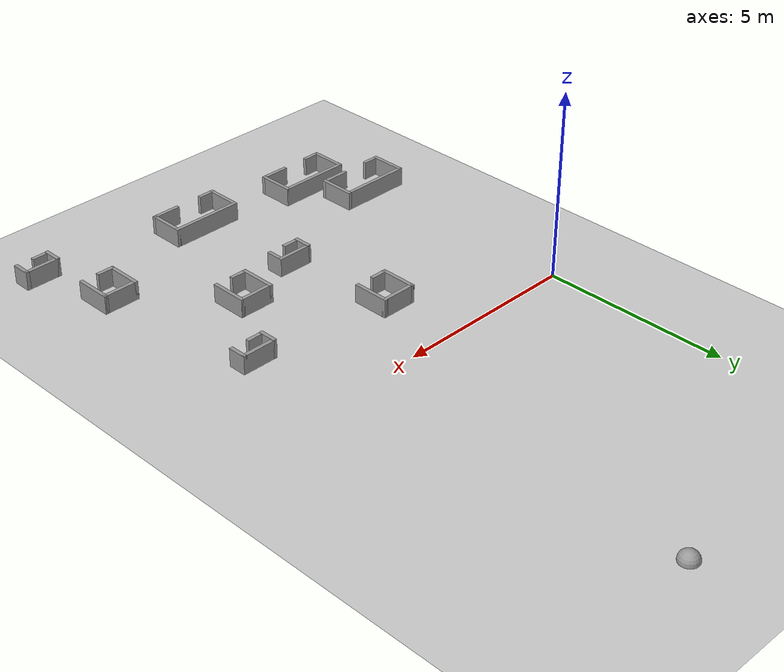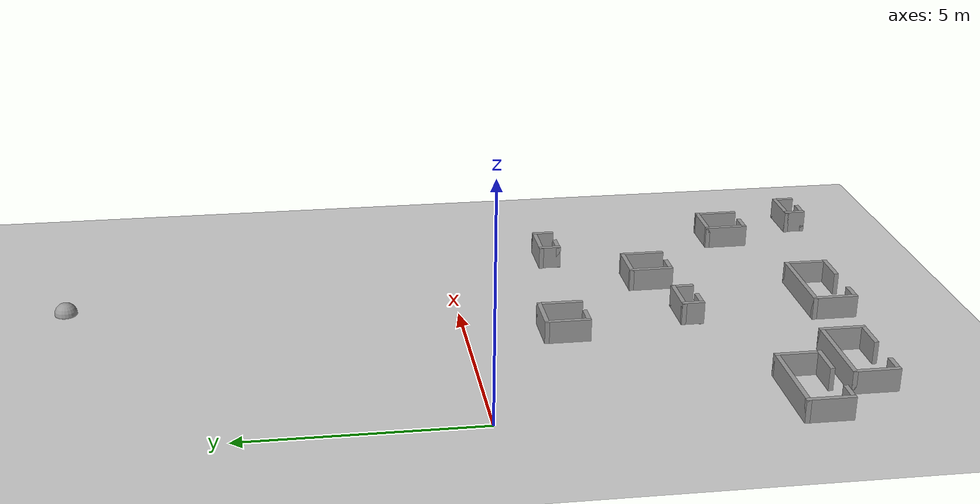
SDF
<sdf version="1.6">
 <world name="default">
  <model name="ground_plane">
   <static>1</static>
   <link name="link">
    <collision name="collision">
     <geometry><plane><normal>0 0 1</normal><size>20 20</size></plane></geometry>
     <surface>
      <contact><collide_bitmask>65535</collide_bitmask></contact>
      <friction><ode><mu>100</mu><mu2>50</mu2></ode></friction>
     </surface>
    </collision>
    <visual name="visual">
     <cast_shadows>0</cast_shadows>
     <geometry><plane><normal>0 0 1</normal><size>20 20</size></plane></geometry>
     <material>
      <script><uri>file://media/materials/scripts/gazebo.material</uri><name>Gazebo/Grey</name></script>
     </material>
    </visual>
   </link>
  </model>
  <model name="shape0">
   <pose>4.3 -4.95 0 0 -0 0</pose>
   <link name="Wall_0">
    <pose>0 0.2 0 0 -0 0</pose>
    <inertial>
     <mass>1</mass>
     <inertia><ixx>1</ixx><ixy>0</ixy><ixz>0</ixz><iyy>1</iyy><iyz>0</iyz><izz>1</izz></inertia>
    </inertial>
    <visual name="Wall_0_Visual">
     <pose>0 0 0.25 0 -0 0</pose>
     <geometry><box><size>1 0.1 0.5</size></box></geometry>
     <material>
      <script><uri>file://media/materials/scripts/gazebo.material</uri><name>Gazebo/Grey</name></script>
      <ambient>1 1 1 1</ambient>
      <shader type="vertex"><normal_map>__default__</normal_map></shader>
      <diffuse>0.7 0.7 0.7 1</diffuse>
      <specular>0.01 0.01 0.01 1</specular>
      <emissive>0 0 0 1</emissive>
     </material>
     <meta><layer>0</layer></meta>
    </visual>
    <collision name="Wall_0_Collision">
     <pose>0 0 0.25 0 -0 0</pose>
     <geometry><box><size>1 0.1 0.5</size></box></geometry>
     <surface>
      <friction>
       <ode><mu>1</mu><mu2>1</mu2><fdir1>0 0 0</fdir1><slip1>0</slip1><slip2>0</slip2></ode>
       <torsional>
        <coefficient>1</coefficient>
        <patch_radius>0</patch_radius>
        <surface_radius>0</surface_radius>
        <use_patch_radius>1</use_patch_radius>
        <ode><slip>0</slip></ode>
       </torsional>
      </friction>
      <bounce><restitution_coefficient>0</restitution_coefficient><threshold>1e+06</threshold></bounce>
      <contact>
       <collide_without_contact>0</collide_without_contact>
       <collide_without_contact_bitmask>1</collide_without_contact_bitmask>
       <collide_bitmask>1</collide_bitmask>
       <ode>
        <soft_cfm>0</soft_cfm>
        <soft_erp>0.2</soft_erp>
        <kp>1e+13</kp>
        <kd>1</kd>
        <max_vel>0.01</max_vel>
        <min_depth>0</min_depth>
       </ode>
       <bullet>
        <split_impulse>1</split_impulse>
        <split_impulse_penetration_threshold>-0.01</split_impulse_penetration_threshold>
        <soft_cfm>0</soft_cfm>
        <soft_erp>0.2</soft_erp>
        <kp>1e+13</kp>
        <kd>1</kd>
       </bullet>
      </contact>
     </surface>
    </collision>
   </link>
   <link name="Wall_2">
    <pose>-0.45 0 0.01 0 0 -1.5708</pose>
    <inertial>
     <mass>1</mass>
     <inertia><ixx>1</ixx><ixy>0</ixy><ixz>0</ixz><iyy>1</iyy><iyz>0</iyz><izz>1</izz></inertia>
    </inertial>
    <visual name="Wall_2_Visual">
     <pose>0 0 0.25 0 -0 0</pose>
     <geometry><box><size>0.5 0.1 0.5</size></box></geometry>
     <material>
      <script><uri>file://media/materials/scripts/gazebo.material</uri><name>Gazebo/Grey</name></script>
      <ambient>1 1 1 1</ambient>
      <shader type="vertex"><normal_map>__default__</normal_map></shader>
      <diffuse>0.7 0.7 0.7 1</diffuse>
      <specular>0.01 0.01 0.01 1</specular>
      <emissive>0 0 0 1</emissive>
     </material>
     <meta><layer>0</layer></meta>
    </visual>
    <collision name="Wall_2_Collision">
     <pose>0 0 0.25 0 -0 0</pose>
     <geometry><box><size>0.5 0.1 0.5</size></box></geometry>
     <surface>
      <friction>
       <ode><mu>1</mu><mu2>1</mu2><fdir1>0 0 0</fdir1><slip1>0</slip1><slip2>0</slip2></ode>
       <torsional>
        <coefficient>1</coefficient>
        <patch_radius>0</patch_radius>
        <surface_radius>0</surface_radius>
        <use_patch_radius>1</use_patch_radius>
        <ode><slip>0</slip></ode>
       </torsional>
      </friction>
      <bounce><restitution_coefficient>0</restitution_coefficient><threshold>1e+06</threshold></bounce>
      <contact>
       <collide_without_contact>0</collide_without_contact>
       <collide_without_contact_bitmask>1</collide_without_contact_bitmask>
       <collide_bitmask>1</collide_bitmask>
       <ode>
        <soft_cfm>0</soft_cfm>
        <soft_erp>0.2</soft_erp>
        <kp>1e+13</kp>
        <kd>1</kd>
        <max_vel>0.01</max_vel>
        <min_depth>0</min_depth>
       </ode>
       <bullet>
        <split_impulse>1</split_impulse>
        <split_impulse_penetration_threshold>-0.01</split_impulse_penetration_threshold>
        <soft_cfm>0</soft_cfm>
        <soft_erp>0.2</soft_erp>
        <kp>1e+13</kp>
        <kd>1</kd>
       </bullet>
      </contact>
     </surface>
    </collision>
   </link>
   <link name="Wall_4">
    <pose>0.45 0 0 0 0 -1.5708</pose>
    <inertial>
     <mass>1</mass>
     <inertia><ixx>1</ixx><ixy>0</ixy><ixz>0</ixz><iyy>1</iyy><iyz>0</iyz><izz>1</izz></inertia>
    </inertial>
    <visual name="Wall_4_Visual">
     <pose>0 0 0.25 0 -0 0</pose>
     <geometry><box><size>0.5 0.1 0.5</size></box></geometry>
     <material>
      <script><uri>file://media/materials/scripts/gazebo.material</uri><name>Gazebo/Grey</name></script>
      <ambient>1 1 1 1</ambient>
      <shader type="vertex"><normal_map>__default__</normal_map></shader>
      <diffuse>0.7 0.7 0.7 1</diffuse>
      <specular>0.01 0.01 0.01 1</specular>
      <emissive>0 0 0 1</emissive>
     </material>
     <meta><layer>0</layer></meta>
    </visual>
    <collision name="Wall_4_Collision">
     <pose>0 0 0.25 0 -0 0</pose>
     <geometry><box><size>0.5 0.1 0.5</size></box></geometry>
     <surface>
      <friction>
       <ode><mu>1</mu><mu2>1</mu2><fdir1>0 0 0</fdir1><slip1>0</slip1><slip2>0</slip2></ode>
       <torsional>
        <coefficient>1</coefficient>
        <patch_radius>0</patch_radius>
        <surface_radius>0</surface_radius>
        <use_patch_radius>1</use_patch_radius>
        <ode><slip>0</slip></ode>
       </torsional>
      </friction>
      <bounce><restitution_coefficient>0</restitution_coefficient><threshold>1e+06</threshold></bounce>
      <contact>
       <collide_without_contact>0</collide_without_contact>
       <collide_without_contact_bitmask>1</collide_without_contact_bitmask>
       <collide_bitmask>1</collide_bitmask>
       <ode>
        <soft_cfm>0</soft_cfm>
        <soft_erp>0.2</soft_erp>
        <kp>1e+13</kp>
        <kd>1</kd>
        <max_vel>0.01</max_vel>
        <min_depth>0</min_depth>
       </ode>
       <bullet>
        <split_impulse>1</split_impulse>
        <split_impulse_penetration_threshold>-0.01</split_impulse_penetration_threshold>
        <soft_cfm>0</soft_cfm>
        <soft_erp>0.2</soft_erp>
        <kp>1e+13</kp>
        <kd>1</kd>
       </bullet>
      </contact>
     </surface>
    </collision>
   </link>
   <link name="Wall_7">
    <pose>-0.25 -0.2 0 0 -0 0</pose>
    <inertial>
     <mass>1</mass>
     <inertia><ixx>1</ixx><ixy>0</ixy><ixz>0</ixz><iyy>1</iyy><iyz>0</iyz><izz>1</izz></inertia>
    </inertial>
    <visual name="Wall_7_Visual">
     <pose>0 0 0.25 0 -0 0</pose>
     <geometry><box><size>0.5 0.1 0.5</size></box></geometry>
     <material>
      <script><uri>file://media/materials/scripts/gazebo.material</uri><name>Gazebo/Grey</name></script>
      <ambient>1 1 1 1</ambient>
      <shader type="vertex"><normal_map>__default__</normal_map></shader>
      <diffuse>0.7 0.7 0.7 1</diffuse>
      <specular>0.01 0.01 0.01 1</specular>
      <emissive>0 0 0 1</emissive>
     </material>
     <meta><layer>0</layer></meta>
    </visual>
    <collision name="Wall_7_Collision">
     <pose>0 0 0.25 0 -0 0</pose>
     <geometry><box><size>0.5 0.1 0.5</size></box></geometry>
     <surface>
      <friction>
       <ode><mu>1</mu><mu2>1</mu2><fdir1>0 0 0</fdir1><slip1>0</slip1><slip2>0</slip2></ode>
       <torsional>
        <coefficient>1</coefficient>
        <patch_radius>0</patch_radius>
        <surface_radius>0</surface_radius>
        <use_patch_radius>1</use_patch_radius>
        <ode><slip>0</slip></ode>
       </torsional>
      </friction>
      <bounce><restitution_coefficient>0</restitution_coefficient><threshold>1e+06</threshold></bounce>
      <contact>
       <collide_without_contact>0</collide_without_contact>
       <collide_without_contact_bitmask>1</collide_without_contact_bitmask>
       <collide_bitmask>1</collide_bitmask>
       <ode>
        <soft_cfm>0</soft_cfm>
        <soft_erp>0.2</soft_erp>
        <kp>1e+13</kp>
        <kd>1</kd>
        <max_vel>0.01</max_vel>
        <min_depth>0</min_depth>
       </ode>
       <bullet>
        <split_impulse>1</split_impulse>
        <split_impulse_penetration_threshold>-0.01</split_impulse_penetration_threshold>
        <soft_cfm>0</soft_cfm>
        <soft_erp>0.2</soft_erp>
        <kp>1e+13</kp>
        <kd>1</kd>
       </bullet>
      </contact>
     </surface>
    </collision>
   </link>
   <static>1</static>
  </model>
  <model name="shape0">
   <pose>7.7 -2.45 0 0 -0 0</pose>
   <link name="Wall_0">
    <pose>0 0.2 0 0 -0 0</pose>
    <inertial>
     <mass>1</mass>
     <inertia><ixx>1</ixx><ixy>0</ixy><ixz>0</ixz><iyy>1</iyy><iyz>0</iyz><izz>1</izz></inertia>
    </inertial>
    <visual name="Wall_0_Visual">
     <pose>0 0 0.25 0 -0 0</pose>
     <geometry><box><size>1 0.1 0.5</size></box></geometry>
     <material>
      <script><uri>file://media/materials/scripts/gazebo.material</uri><name>Gazebo/Grey</name></script>
      <ambient>1 1 1 1</ambient>
      <shader type="vertex"><normal_map>__default__</normal_map></shader>
      <diffuse>0.7 0.7 0.7 1</diffuse>
      <specular>0.01 0.01 0.01 1</specular>
      <emissive>0 0 0 1</emissive>
     </material>
     <meta><layer>0</layer></meta>
    </visual>
    <collision name="Wall_0_Collision">
     <pose>0 0 0.25 0 -0 0</pose>
     <geometry><box><size>1 0.1 0.5</size></box></geometry>
     <surface>
      <friction>
       <ode><mu>1</mu><mu2>1</mu2><fdir1>0 0 0</fdir1><slip1>0</slip1><slip2>0</slip2></ode>
       <torsional>
        <coefficient>1</coefficient>
        <patch_radius>0</patch_radius>
        <surface_radius>0</surface_radius>
        <use_patch_radius>1</use_patch_radius>
        <ode><slip>0</slip></ode>
       </torsional>
      </friction>
      <bounce><restitution_coefficient>0</restitution_coefficient><threshold>1e+06</threshold></bounce>
      <contact>
       <collide_without_contact>0</collide_without_contact>
       <collide_without_contact_bitmask>1</collide_without_contact_bitmask>
       <collide_bitmask>1</collide_bitmask>
       <ode>
        <soft_cfm>0</soft_cfm>
        <soft_erp>0.2</soft_erp>
        <kp>1e+13</kp>
        <kd>1</kd>
        <max_vel>0.01</max_vel>
        <min_depth>0</min_depth>
       </ode>
       <bullet>
        <split_impulse>1</split_impulse>
        <split_impulse_penetration_threshold>-0.01</split_impulse_penetration_threshold>
        <soft_cfm>0</soft_cfm>
        <soft_erp>0.2</soft_erp>
        <kp>1e+13</kp>
        <kd>1</kd>
       </bullet>
      </contact>
     </surface>
    </collision>
   </link>
   <link name="Wall_2">
    <pose>-0.45 0 0.01 0 0 -1.5708</pose>
    <inertial>
     <mass>1</mass>
     <inertia><ixx>1</ixx><ixy>0</ixy><ixz>0</ixz><iyy>1</iyy><iyz>0</iyz><izz>1</izz></inertia>
    </inertial>
    <visual name="Wall_2_Visual">
     <pose>0 0 0.25 0 -0 0</pose>
     <geometry><box><size>0.5 0.1 0.5</size></box></geometry>
     <material>
      <script><uri>file://media/materials/scripts/gazebo.material</uri><name>Gazebo/Grey</name></script>
      <ambient>1 1 1 1</ambient>
      <shader type="vertex"><normal_map>__default__</normal_map></shader>
      <diffuse>0.7 0.7 0.7 1</diffuse>
      <specular>0.01 0.01 0.01 1</specular>
      <emissive>0 0 0 1</emissive>
     </material>
     <meta><layer>0</layer></meta>
    </visual>
    <collision name="Wall_2_Collision">
     <pose>0 0 0.25 0 -0 0</pose>
     <geometry><box><size>0.5 0.1 0.5</size></box></geometry>
     <surface>
      <friction>
       <ode><mu>1</mu><mu2>1</mu2><fdir1>0 0 0</fdir1><slip1>0</slip1><slip2>0</slip2></ode>
       <torsional>
        <coefficient>1</coefficient>
        <patch_radius>0</patch_radius>
        <surface_radius>0</surface_radius>
        <use_patch_radius>1</use_patch_radius>
        <ode><slip>0</slip></ode>
       </torsional>
      </friction>
      <bounce><restitution_coefficient>0</restitution_coefficient><threshold>1e+06</threshold></bounce>
      <contact>
       <collide_without_contact>0</collide_without_contact>
       <collide_without_contact_bitmask>1</collide_without_contact_bitmask>
       <collide_bitmask>1</collide_bitmask>
       <ode>
        <soft_cfm>0</soft_cfm>
        <soft_erp>0.2</soft_erp>
        <kp>1e+13</kp>
        <kd>1</kd>
        <max_vel>0.01</max_vel>
        <min_depth>0</min_depth>
       </ode>
       <bullet>
        <split_impulse>1</split_impulse>
        <split_impulse_penetration_threshold>-0.01</split_impulse_penetration_threshold>
        <soft_cfm>0</soft_cfm>
        <soft_erp>0.2</soft_erp>
        <kp>1e+13</kp>
        <kd>1</kd>
       </bullet>
      </contact>
     </surface>
    </collision>
   </link>
   <link name="Wall_4">
    <pose>0.45 0 0 0 0 -1.5708</pose>
    <inertial>
     <mass>1</mass>
     <inertia><ixx>1</ixx><ixy>0</ixy><ixz>0</ixz><iyy>1</iyy><iyz>0</iyz><izz>1</izz></inertia>
    </inertial>
    <visual name="Wall_4_Visual">
     <pose>0 0 0.25 0 -0 0</pose>
     <geometry><box><size>0.5 0.1 0.5</size></box></geometry>
     <material>
      <script><uri>file://media/materials/scripts/gazebo.material</uri><name>Gazebo/Grey</name></script>
      <ambient>1 1 1 1</ambient>
      <shader type="vertex"><normal_map>__default__</normal_map></shader>
      <diffuse>0.7 0.7 0.7 1</diffuse>
      <specular>0.01 0.01 0.01 1</specular>
      <emissive>0 0 0 1</emissive>
     </material>
     <meta><layer>0</layer></meta>
    </visual>
    <collision name="Wall_4_Collision">
     <pose>0 0 0.25 0 -0 0</pose>
     <geometry><box><size>0.5 0.1 0.5</size></box></geometry>
     <surface>
      <friction>
       <ode><mu>1</mu><mu2>1</mu2><fdir1>0 0 0</fdir1><slip1>0</slip1><slip2>0</slip2></ode>
       <torsional>
        <coefficient>1</coefficient>
        <patch_radius>0</patch_radius>
        <surface_radius>0</surface_radius>
        <use_patch_radius>1</use_patch_radius>
        <ode><slip>0</slip></ode>
       </torsional>
      </friction>
      <bounce><restitution_coefficient>0</restitution_coefficient><threshold>1e+06</threshold></bounce>
      <contact>
       <collide_without_contact>0</collide_without_contact>
       <collide_without_contact_bitmask>1</collide_without_contact_bitmask>
       <collide_bitmask>1</collide_bitmask>
       <ode>
        <soft_cfm>0</soft_cfm>
        <soft_erp>0.2</soft_erp>
        <kp>1e+13</kp>
        <kd>1</kd>
        <max_vel>0.01</max_vel>
        <min_depth>0</min_depth>
       </ode>
       <bullet>
        <split_impulse>1</split_impulse>
        <split_impulse_penetration_threshold>-0.01</split_impulse_penetration_threshold>
        <soft_cfm>0</soft_cfm>
        <soft_erp>0.2</soft_erp>
        <kp>1e+13</kp>
        <kd>1</kd>
       </bullet>
      </contact>
     </surface>
    </collision>
   </link>
   <link name="Wall_7">
    <pose>-0.25 -0.2 0 0 -0 0</pose>
    <inertial>
     <mass>1</mass>
     <inertia><ixx>1</ixx><ixy>0</ixy><ixz>0</ixz><iyy>1</iyy><iyz>0</iyz><izz>1</izz></inertia>
    </inertial>
    <visual name="Wall_7_Visual">
     <pose>0 0 0.25 0 -0 0</pose>
     <geometry><box><size>0.5 0.1 0.5</size></box></geometry>
     <material>
      <script><uri>file://media/materials/scripts/gazebo.material</uri><name>Gazebo/Grey</name></script>
      <ambient>1 1 1 1</ambient>
      <shader type="vertex"><normal_map>__default__</normal_map></shader>
      <diffuse>0.7 0.7 0.7 1</diffuse>
      <specular>0.01 0.01 0.01 1</specular>
      <emissive>0 0 0 1</emissive>
     </material>
     <meta><layer>0</layer></meta>
    </visual>
    <collision name="Wall_7_Collision">
     <pose>0 0 0.25 0 -0 0</pose>
     <geometry><box><size>0.5 0.1 0.5</size></box></geometry>
     <surface>
      <friction>
       <ode><mu>1</mu><mu2>1</mu2><fdir1>0 0 0</fdir1><slip1>0</slip1><slip2>0</slip2></ode>
       <torsional>
        <coefficient>1</coefficient>
        <patch_radius>0</patch_radius>
        <surface_radius>0</surface_radius>
        <use_patch_radius>1</use_patch_radius>
        <ode><slip>0</slip></ode>
       </torsional>
      </friction>
      <bounce><restitution_coefficient>0</restitution_coefficient><threshold>1e+06</threshold></bounce>
      <contact>
       <collide_without_contact>0</collide_without_contact>
       <collide_without_contact_bitmask>1</collide_without_contact_bitmask>
       <collide_bitmask>1</collide_bitmask>
       <ode>
        <soft_cfm>0</soft_cfm>
        <soft_erp>0.2</soft_erp>
        <kp>1e+13</kp>
        <kd>1</kd>
        <max_vel>0.01</max_vel>
        <min_depth>0</min_depth>
       </ode>
       <bullet>
        <split_impulse>1</split_impulse>
        <split_impulse_penetration_threshold>-0.01</split_impulse_penetration_threshold>
        <soft_cfm>0</soft_cfm>
        <soft_erp>0.2</soft_erp>
        <kp>1e+13</kp>
        <kd>1</kd>
       </bullet>
      </contact>
     </surface>
    </collision>
   </link>
   <static>1</static>
  </model>
  <model name="shape4">
   <pose>8.4 -6.9 0 0 -0 0</pose>
   <link name="Wall_14">
    <collision name="Wall_14_Collision">
     <geometry><box><size>1 0.1 0.5</size></box></geometry>
     <pose>0 0 0.25 0 -0 0</pose>
    </collision>
    <visual name="Wall_14_Visual">
     <pose>0 0 0.25 0 -0 0</pose>
     <geometry><box><size>1 0.1 0.5</size></box></geometry>
     <material>
      <script><uri>file://media/materials/scripts/gazebo.material</uri><name>Gazebo/Grey</name></script>
      <ambient>1 1 1 1</ambient>
     </material>
     <meta><layer>0</layer></meta>
    </visual>
    <pose>-0 0.45 0 0 -0 0</pose>
   </link>
   <link name="Wall_15">
    <collision name="Wall_15_Collision">
     <geometry><box><size>1 0.1 0.5</size></box></geometry>
     <pose>0 0 0.25 0 -0 0</pose>
    </collision>
    <visual name="Wall_15_Visual">
     <pose>0 0 0.25 0 -0 0</pose>
     <geometry><box><size>1 0.1 0.5</size></box></geometry>
     <material>
      <script><uri>file://media/materials/scripts/gazebo.material</uri><name>Gazebo/Grey</name></script>
      <ambient>1 1 1 1</ambient>
     </material>
     <meta><layer>0</layer></meta>
    </visual>
    <pose>0.45 -0 0 0 -0 -1.5708</pose>
   </link>
   <link name="Wall_17">
    <collision name="Wall_17_Collision">
     <geometry><box><size>1 0.1 0.5</size></box></geometry>
     <pose>0 0 0.25 0 -0 0</pose>
    </collision>
    <visual name="Wall_17_Visual">
     <pose>0 0 0.25 0 -0 0</pose>
     <geometry><box><size>1 0.1 0.5</size></box></geometry>
     <material>
      <script><uri>file://media/materials/scripts/gazebo.material</uri><name>Gazebo/Grey</name></script>
      <ambient>1 1 1 1</ambient>
     </material>
     <meta><layer>0</layer></meta>
    </visual>
    <pose>-0.45 -0 0 0 -0 -1.5708</pose>
   </link>
   <link name="Wall_18">
    <collision name="Wall_18_Collision">
     <geometry><box><size>0.5 0.1 0.5</size></box></geometry>
     <pose>0 0 0.25 0 -0 0</pose>
    </collision>
    <visual name="Wall_18_Visual">
     <pose>0 0 0.25 0 -0 0</pose>
     <geometry><box><size>0.5 0.1 0.5</size></box></geometry>
     <material>
      <script><uri>file://media/materials/scripts/gazebo.material</uri><name>Gazebo/Grey</name></script>
      <ambient>1 1 1 1</ambient>
     </material>
     <meta><layer>0</layer></meta>
    </visual>
    <pose>-0.25 -0.45 0 0 -0 0</pose>
   </link>
   <static>1</static>
  </model>
  <model name="shape4">
   <pose>6.2 -4.5 0 0 -0 0</pose>
   <link name="Wall_14">
    <collision name="Wall_14_Collision">
     <geometry><box><size>1 0.1 0.5</size></box></geometry>
     <pose>0 0 0.25 0 -0 0</pose>
    </collision>
    <visual name="Wall_14_Visual">
     <pose>0 0 0.25 0 -0 0</pose>
     <geometry><box><size>1 0.1 0.5</size></box></geometry>
     <material>
      <script><uri>file://media/materials/scripts/gazebo.material</uri><name>Gazebo/Grey</name></script>
      <ambient>1 1 1 1</ambient>
     </material>
     <meta><layer>0</layer></meta>
    </visual>
    <pose>-0 0.45 0 0 -0 0</pose>
   </link>
   <link name="Wall_15">
    <collision name="Wall_15_Collision">
     <geometry><box><size>1 0.1 0.5</size></box></geometry>
     <pose>0 0 0.25 0 -0 0</pose>
    </collision>
    <visual name="Wall_15_Visual">
     <pose>0 0 0.25 0 -0 0</pose>
     <geometry><box><size>1 0.1 0.5</size></box></geometry>
     <material>
      <script><uri>file://media/materials/scripts/gazebo.material</uri><name>Gazebo/Grey</name></script>
      <ambient>1 1 1 1</ambient>
     </material>
     <meta><layer>0</layer></meta>
    </visual>
    <pose>0.45 -0 0 0 -0 -1.5708</pose>
   </link>
   <link name="Wall_17">
    <collision name="Wall_17_Collision">
     <geometry><box><size>1 0.1 0.5</size></box></geometry>
     <pose>0 0 0.25 0 -0 0</pose>
    </collision>
    <visual name="Wall_17_Visual">
     <pose>0 0 0.25 0 -0 0</pose>
     <geometry><box><size>1 0.1 0.5</size></box></geometry>
     <material>
      <script><uri>file://media/materials/scripts/gazebo.material</uri><name>Gazebo/Grey</name></script>
      <ambient>1 1 1 1</ambient>
     </material>
     <meta><layer>0</layer></meta>
    </visual>
    <pose>-0.45 -0 0 0 -0 -1.5708</pose>
   </link>
   <link name="Wall_18">
    <collision name="Wall_18_Collision">
     <geometry><box><size>0.5 0.1 0.5</size></box></geometry>
     <pose>0 0 0.25 0 -0 0</pose>
    </collision>
    <visual name="Wall_18_Visual">
     <pose>0 0 0.25 0 -0 0</pose>
     <geometry><box><size>0.5 0.1 0.5</size></box></geometry>
     <material>
      <script><uri>file://media/materials/scripts/gazebo.material</uri><name>Gazebo/Grey</name></script>
      <ambient>1 1 1 1</ambient>
     </material>
     <meta><layer>0</layer></meta>
    </visual>
    <pose>-0.25 -0.45 0 0 -0 0</pose>
   </link>
   <static>1</static>
  </model>
  <model name="ball_d=50">
   <link name="link_1">
    <inertial>
     <mass>1</mass>
     <inertia><ixx>0.1</ixx><ixy>0</ixy><ixz>0</ixz><iyy>0.1</iyy><iyz>0</iyz><izz>0.1</izz></inertia>
    </inertial>
    <pose>6.15 8.55 0 0 -0 0</pose>
    <visual name="visual">
     <geometry><sphere><radius>0.25</radius></sphere></geometry>
     <material>
      <lighting>1</lighting>
      <script><uri>file://media/materials/scripts/gazebo.material</uri><name>Gazebo/Grey</name></script>
      <shader type="vertex"><normal_map>__default__</normal_map></shader>
      <ambient>0.3 0.3 0.3 1</ambient>
      <diffuse>0.7 0.7 0.7 1</diffuse>
      <specular>0.01 0.01 0.01 1</specular>
      <emissive>0 0 0 1</emissive>
     </material>
    </visual>
    <collision name="collision">
     <geometry><sphere><radius>0.25</radius></sphere></geometry>
     <surface>
      <friction>
       <ode><mu>1</mu><mu2>1</mu2><fdir1>0 0 0</fdir1><slip1>0</slip1><slip2>0</slip2></ode>
       <torsional>
        <coefficient>1</coefficient>
        <patch_radius>0</patch_radius>
        <surface_radius>0</surface_radius>
        <use_patch_radius>1</use_patch_radius>
        <ode><slip>0</slip></ode>
       </torsional>
      </friction>
      <bounce><restitution_coefficient>0</restitution_coefficient><threshold>1e+06</threshold></bounce>
      <contact>
       <collide_without_contact>0</collide_without_contact>
       <collide_without_contact_bitmask>1</collide_without_contact_bitmask>
       <collide_bitmask>1</collide_bitmask>
       <ode>
        <soft_cfm>0</soft_cfm>
        <soft_erp>0.2</soft_erp>
        <kp>1e+13</kp>
        <kd>1</kd>
        <max_vel>0.01</max_vel>
        <min_depth>0</min_depth>
       </ode>
       <bullet>
        <split_impulse>1</split_impulse>
        <split_impulse_penetration_threshold>-0.01</split_impulse_penetration_threshold>
        <soft_cfm>0</soft_cfm>
        <soft_erp>0.2</soft_erp>
        <kp>1e+13</kp>
        <kd>1</kd>
       </bullet>
      </contact>
     </surface>
    </collision>
   </link>
   <static>0</static>
  </model>
  <model name="shape1">
   <pose>0.3 -6.4 0 0 -0 0</pose>
   <link name="Wall_0">
    <collision name="Wall_0_Collision">
     <geometry><box><size>2 0.1 0.5</size></box></geometry>
     <pose>0 0 0.25 0 -0 0</pose>
    </collision>
    <visual name="Wall_0_Visual">
     <pose>0 0 0.25 0 -0 0</pose>
     <geometry><box><size>2 0.1 0.5</size></box></geometry>
     <material>
      <script><uri>file://media/materials/scripts/gazebo.material</uri><name>Gazebo/Grey</name></script>
      <ambient>1 1 1 1</ambient>
     </material>
     <meta><layer>0</layer></meta>
    </visual>
    <pose>0 0.45 0 0 -0 0</pose>
   </link>
   <link name="Wall_1">
    <collision name="Wall_1_Collision">
     <geometry><box><size>1 0.1 0.5</size></box></geometry>
     <pose>0 0 0.25 0 -0 0</pose>
    </collision>
    <visual name="Wall_1_Visual">
     <pose>0 0 0.25 0 -0 0</pose>
     <geometry><box><size>1 0.1 0.5</size></box></geometry>
     <material>
      <script><uri>file://media/materials/scripts/gazebo.material</uri><name>Gazebo/Grey</name></script>
      <ambient>1 1 1 1</ambient>
     </material>
     <meta><layer>0</layer></meta>
    </visual>
    <pose>0.95 -0 0 0 -0 -1.5708</pose>
   </link>
   <link name="Wall_2">
    <collision name="Wall_2_Collision">
     <geometry><box><size>0.8 0.1 0.5</size></box></geometry>
     <pose>0 0 0.25 0 -0 0</pose>
    </collision>
    <visual name="Wall_2_Visual">
     <pose>0 0 0.25 0 -0 0</pose>
     <geometry><box><size>0.8 0.1 0.5</size></box></geometry>
     <material>
      <script><uri>file://media/materials/scripts/gazebo.material</uri><name>Gazebo/Grey</name></script>
      <ambient>1 1 1 1</ambient>
     </material>
     <meta><layer>0</layer></meta>
    </visual>
    <pose>0.6 -0.45 0 0 -0 3.14159</pose>
   </link>
   <link name="Wall_4">
    <collision name="Wall_4_Collision">
     <geometry><box><size>1 0.1 0.5</size></box></geometry>
     <pose>0 0 0.25 0 -0 0</pose>
    </collision>
    <visual name="Wall_4_Visual">
     <pose>0 0 0.25 0 -0 0</pose>
     <geometry><box><size>1 0.1 0.5</size></box></geometry>
     <material>
      <script><uri>file://media/materials/scripts/gazebo.material</uri><name>Gazebo/Grey</name></script>
      <ambient>1 1 1 1</ambient>
     </material>
     <meta><layer>0</layer></meta>
    </visual>
    <pose>-0.95 -0 0 0 -0 -1.5708</pose>
   </link>
   <link name="Wall_5">
    <collision name="Wall_5_Collision">
     <geometry><box><size>0.499474 0.1 0.5</size></box></geometry>
     <pose>0 0 0.25 0 -0 0</pose>
    </collision>
    <visual name="Wall_5_Visual">
     <pose>0 0 0.25 0 -0 0</pose>
     <geometry><box><size>0.499474 0.1 0.5</size></box></geometry>
     <material>
      <script><uri>file://media/materials/scripts/gazebo.material</uri><name>Gazebo/Grey</name></script>
      <ambient>1 1 1 1</ambient>
     </material>
     <meta><layer>0</layer></meta>
    </visual>
    <pose>-0.75 -0.45 0 0 -0 0</pose>
   </link>
   <static>1</static>
  </model>
  <model name="shape0">
   <pose>9.1 -8.85 0 0 -0 0</pose>
   <link name="Wall_0">
    <pose>0 0.2 0 0 -0 0</pose>
    <inertial>
     <mass>1</mass>
     <inertia><ixx>1</ixx><ixy>0</ixy><ixz>0</ixz><iyy>1</iyy><iyz>0</iyz><izz>1</izz></inertia>
    </inertial>
    <visual name="Wall_0_Visual">
     <pose>0 0 0.25 0 -0 0</pose>
     <geometry><box><size>1 0.1 0.5</size></box></geometry>
     <material>
      <script><uri>file://media/materials/scripts/gazebo.material</uri><name>Gazebo/Grey</name></script>
      <ambient>1 1 1 1</ambient>
      <shader type="vertex"><normal_map>__default__</normal_map></shader>
      <diffuse>0.7 0.7 0.7 1</diffuse>
      <specular>0.01 0.01 0.01 1</specular>
      <emissive>0 0 0 1</emissive>
     </material>
     <meta><layer>0</layer></meta>
    </visual>
    <collision name="Wall_0_Collision">
     <pose>0 0 0.25 0 -0 0</pose>
     <geometry><box><size>1 0.1 0.5</size></box></geometry>
     <surface>
      <friction>
       <ode><mu>1</mu><mu2>1</mu2><fdir1>0 0 0</fdir1><slip1>0</slip1><slip2>0</slip2></ode>
       <torsional>
        <coefficient>1</coefficient>
        <patch_radius>0</patch_radius>
        <surface_radius>0</surface_radius>
        <use_patch_radius>1</use_patch_radius>
        <ode><slip>0</slip></ode>
       </torsional>
      </friction>
      <bounce><restitution_coefficient>0</restitution_coefficient><threshold>1e+06</threshold></bounce>
      <contact>
       <collide_without_contact>0</collide_without_contact>
       <collide_without_contact_bitmask>1</collide_without_contact_bitmask>
       <collide_bitmask>1</collide_bitmask>
       <ode>
        <soft_cfm>0</soft_cfm>
        <soft_erp>0.2</soft_erp>
        <kp>1e+13</kp>
        <kd>1</kd>
        <max_vel>0.01</max_vel>
        <min_depth>0</min_depth>
       </ode>
       <bullet>
        <split_impulse>1</split_impulse>
        <split_impulse_penetration_threshold>-0.01</split_impulse_penetration_threshold>
        <soft_cfm>0</soft_cfm>
        <soft_erp>0.2</soft_erp>
        <kp>1e+13</kp>
        <kd>1</kd>
       </bullet>
      </contact>
     </surface>
    </collision>
   </link>
   <link name="Wall_2">
    <pose>-0.45 0 0.01 0 0 -1.5708</pose>
    <inertial>
     <mass>1</mass>
     <inertia><ixx>1</ixx><ixy>0</ixy><ixz>0</ixz><iyy>1</iyy><iyz>0</iyz><izz>1</izz></inertia>
    </inertial>
    <visual name="Wall_2_Visual">
     <pose>0 0 0.25 0 -0 0</pose>
     <geometry><box><size>0.5 0.1 0.5</size></box></geometry>
     <material>
      <script><uri>file://media/materials/scripts/gazebo.material</uri><name>Gazebo/Grey</name></script>
      <ambient>1 1 1 1</ambient>
      <shader type="vertex"><normal_map>__default__</normal_map></shader>
      <diffuse>0.7 0.7 0.7 1</diffuse>
      <specular>0.01 0.01 0.01 1</specular>
      <emissive>0 0 0 1</emissive>
     </material>
     <meta><layer>0</layer></meta>
    </visual>
    <collision name="Wall_2_Collision">
     <pose>0 0 0.25 0 -0 0</pose>
     <geometry><box><size>0.5 0.1 0.5</size></box></geometry>
     <surface>
      <friction>
       <ode><mu>1</mu><mu2>1</mu2><fdir1>0 0 0</fdir1><slip1>0</slip1><slip2>0</slip2></ode>
       <torsional>
        <coefficient>1</coefficient>
        <patch_radius>0</patch_radius>
        <surface_radius>0</surface_radius>
        <use_patch_radius>1</use_patch_radius>
        <ode><slip>0</slip></ode>
       </torsional>
      </friction>
      <bounce><restitution_coefficient>0</restitution_coefficient><threshold>1e+06</threshold></bounce>
      <contact>
       <collide_without_contact>0</collide_without_contact>
       <collide_without_contact_bitmask>1</collide_without_contact_bitmask>
       <collide_bitmask>1</collide_bitmask>
       <ode>
        <soft_cfm>0</soft_cfm>
        <soft_erp>0.2</soft_erp>
        <kp>1e+13</kp>
        <kd>1</kd>
        <max_vel>0.01</max_vel>
        <min_depth>0</min_depth>
       </ode>
       <bullet>
        <split_impulse>1</split_impulse>
        <split_impulse_penetration_threshold>-0.01</split_impulse_penetration_threshold>
        <soft_cfm>0</soft_cfm>
        <soft_erp>0.2</soft_erp>
        <kp>1e+13</kp>
        <kd>1</kd>
       </bullet>
      </contact>
     </surface>
    </collision>
   </link>
   <link name="Wall_4">
    <pose>0.45 0 0 0 0 -1.5708</pose>
    <inertial>
     <mass>1</mass>
     <inertia><ixx>1</ixx><ixy>0</ixy><ixz>0</ixz><iyy>1</iyy><iyz>0</iyz><izz>1</izz></inertia>
    </inertial>
    <visual name="Wall_4_Visual">
     <pose>0 0 0.25 0 -0 0</pose>
     <geometry><box><size>0.5 0.1 0.5</size></box></geometry>
     <material>
      <script><uri>file://media/materials/scripts/gazebo.material</uri><name>Gazebo/Grey</name></script>
      <ambient>1 1 1 1</ambient>
      <shader type="vertex"><normal_map>__default__</normal_map></shader>
      <diffuse>0.7 0.7 0.7 1</diffuse>
      <specular>0.01 0.01 0.01 1</specular>
      <emissive>0 0 0 1</emissive>
     </material>
     <meta><layer>0</layer></meta>
    </visual>
    <collision name="Wall_4_Collision">
     <pose>0 0 0.25 0 -0 0</pose>
     <geometry><box><size>0.5 0.1 0.5</size></box></geometry>
     <surface>
      <friction>
       <ode><mu>1</mu><mu2>1</mu2><fdir1>0 0 0</fdir1><slip1>0</slip1><slip2>0</slip2></ode>
       <torsional>
        <coefficient>1</coefficient>
        <patch_radius>0</patch_radius>
        <surface_radius>0</surface_radius>
        <use_patch_radius>1</use_patch_radius>
        <ode><slip>0</slip></ode>
       </torsional>
      </friction>
      <bounce><restitution_coefficient>0</restitution_coefficient><threshold>1e+06</threshold></bounce>
      <contact>
       <collide_without_contact>0</collide_without_contact>
       <collide_without_contact_bitmask>1</collide_without_contact_bitmask>
       <collide_bitmask>1</collide_bitmask>
       <ode>
        <soft_cfm>0</soft_cfm>
        <soft_erp>0.2</soft_erp>
        <kp>1e+13</kp>
        <kd>1</kd>
        <max_vel>0.01</max_vel>
        <min_depth>0</min_depth>
       </ode>
       <bullet>
        <split_impulse>1</split_impulse>
        <split_impulse_penetration_threshold>-0.01</split_impulse_penetration_threshold>
        <soft_cfm>0</soft_cfm>
        <soft_erp>0.2</soft_erp>
        <kp>1e+13</kp>
        <kd>1</kd>
       </bullet>
      </contact>
     </surface>
    </collision>
   </link>
   <link name="Wall_7">
    <pose>-0.25 -0.2 0 0 -0 0</pose>
    <inertial>
     <mass>1</mass>
     <inertia><ixx>1</ixx><ixy>0</ixy><ixz>0</ixz><iyy>1</iyy><iyz>0</iyz><izz>1</izz></inertia>
    </inertial>
    <visual name="Wall_7_Visual">
     <pose>0 0 0.25 0 -0 0</pose>
     <geometry><box><size>0.5 0.1 0.5</size></box></geometry>
     <material>
      <script><uri>file://media/materials/scripts/gazebo.material</uri><name>Gazebo/Grey</name></script>
      <ambient>1 1 1 1</ambient>
      <shader type="vertex"><normal_map>__default__</normal_map></shader>
      <diffuse>0.7 0.7 0.7 1</diffuse>
      <specular>0.01 0.01 0.01 1</specular>
      <emissive>0 0 0 1</emissive>
     </material>
     <meta><layer>0</layer></meta>
    </visual>
    <collision name="Wall_7_Collision">
     <pose>0 0 0.25 0 -0 0</pose>
     <geometry><box><size>0.5 0.1 0.5</size></box></geometry>
     <surface>
      <friction>
       <ode><mu>1</mu><mu2>1</mu2><fdir1>0 0 0</fdir1><slip1>0</slip1><slip2>0</slip2></ode>
       <torsional>
        <coefficient>1</coefficient>
        <patch_radius>0</patch_radius>
        <surface_radius>0</surface_radius>
        <use_patch_radius>1</use_patch_radius>
        <ode><slip>0</slip></ode>
       </torsional>
      </friction>
      <bounce><restitution_coefficient>0</restitution_coefficient><threshold>1e+06</threshold></bounce>
      <contact>
       <collide_without_contact>0</collide_without_contact>
       <collide_without_contact_bitmask>1</collide_without_contact_bitmask>
       <collide_bitmask>1</collide_bitmask>
       <ode>
        <soft_cfm>0</soft_cfm>
        <soft_erp>0.2</soft_erp>
        <kp>1e+13</kp>
        <kd>1</kd>
        <max_vel>0.01</max_vel>
        <min_depth>0</min_depth>
       </ode>
       <bullet>
        <split_impulse>1</split_impulse>
        <split_impulse_penetration_threshold>-0.01</split_impulse_penetration_threshold>
        <soft_cfm>0</soft_cfm>
        <soft_erp>0.2</soft_erp>
        <kp>1e+13</kp>
        <kd>1</kd>
       </bullet>
      </contact>
     </surface>
    </collision>
   </link>
   <static>1</static>
  </model>
  <model name="shape4">
   <pose>3.8 -2.1 0 0 -0 0</pose>
   <link name="Wall_14">
    <collision name="Wall_14_Collision">
     <geometry><box><size>1 0.1 0.5</size></box></geometry>
     <pose>0 0 0.25 0 -0 0</pose>
    </collision>
    <visual name="Wall_14_Visual">
     <pose>0 0 0.25 0 -0 0</pose>
     <geometry><box><size>1 0.1 0.5</size></box></geometry>
     <material>
      <script><uri>file://media/materials/scripts/gazebo.material</uri><name>Gazebo/Grey</name></script>
      <ambient>1 1 1 1</ambient>
     </material>
     <meta><layer>0</layer></meta>
    </visual>
    <pose>-0 0.45 0 0 -0 0</pose>
   </link>
   <link name="Wall_15">
    <collision name="Wall_15_Collision">
     <geometry><box><size>1 0.1 0.5</size></box></geometry>
     <pose>0 0 0.25 0 -0 0</pose>
    </collision>
    <visual name="Wall_15_Visual">
     <pose>0 0 0.25 0 -0 0</pose>
     <geometry><box><size>1 0.1 0.5</size></box></geometry>
     <material>
      <script><uri>file://media/materials/scripts/gazebo.material</uri><name>Gazebo/Grey</name></script>
      <ambient>1 1 1 1</ambient>
     </material>
     <meta><layer>0</layer></meta>
    </visual>
    <pose>0.45 -0 0 0 -0 -1.5708</pose>
   </link>
   <link name="Wall_17">
    <collision name="Wall_17_Collision">
     <geometry><box><size>1 0.1 0.5</size></box></geometry>
     <pose>0 0 0.25 0 -0 0</pose>
    </collision>
    <visual name="Wall_17_Visual">
     <pose>0 0 0.25 0 -0 0</pose>
     <geometry><box><size>1 0.1 0.5</size></box></geometry>
     <material>
      <script><uri>file://media/materials/scripts/gazebo.material</uri><name>Gazebo/Grey</name></script>
      <ambient>1 1 1 1</ambient>
     </material>
     <meta><layer>0</layer></meta>
    </visual>
    <pose>-0.45 -0 0 0 -0 -1.5708</pose>
   </link>
   <link name="Wall_18">
    <collision name="Wall_18_Collision">
     <geometry><box><size>0.5 0.1 0.5</size></box></geometry>
     <pose>0 0 0.25 0 -0 0</pose>
    </collision>
    <visual name="Wall_18_Visual">
     <pose>0 0 0.25 0 -0 0</pose>
     <geometry><box><size>0.5 0.1 0.5</size></box></geometry>
     <material>
      <script><uri>file://media/materials/scripts/gazebo.material</uri><name>Gazebo/Grey</name></script>
      <ambient>1 1 1 1</ambient>
     </material>
     <meta><layer>0</layer></meta>
    </visual>
    <pose>-0.25 -0.45 0 0 -0 0</pose>
   </link>
   <static>1</static>
  </model>
  <model name="shape1">
   <pose>4.7 -8.1 0 0 -0 0</pose>
   <link name="Wall_0">
    <collision name="Wall_0_Collision">
     <geometry><box><size>2 0.1 0.5</size></box></geometry>
     <pose>0 0 0.25 0 -0 0</pose>
    </collision>
    <visual name="Wall_0_Visual">
     <pose>0 0 0.25 0 -0 0</pose>
     <geometry><box><size>2 0.1 0.5</size></box></geometry>
     <material>
      <script><uri>file://media/materials/scripts/gazebo.material</uri><name>Gazebo/Grey</name></script>
      <ambient>1 1 1 1</ambient>
     </material>
     <meta><layer>0</layer></meta>
    </visual>
    <pose>0 0.45 0 0 -0 0</pose>
   </link>
   <link name="Wall_1">
    <collision name="Wall_1_Collision">
     <geometry><box><size>1 0.1 0.5</size></box></geometry>
     <pose>0 0 0.25 0 -0 0</pose>
    </collision>
    <visual name="Wall_1_Visual">
     <pose>0 0 0.25 0 -0 0</pose>
     <geometry><box><size>1 0.1 0.5</size></box></geometry>
     <material>
      <script><uri>file://media/materials/scripts/gazebo.material</uri><name>Gazebo/Grey</name></script>
      <ambient>1 1 1 1</ambient>
     </material>
     <meta><layer>0</layer></meta>
    </visual>
    <pose>0.95 -0 0 0 -0 -1.5708</pose>
   </link>
   <link name="Wall_2">
    <collision name="Wall_2_Collision">
     <geometry><box><size>0.8 0.1 0.5</size></box></geometry>
     <pose>0 0 0.25 0 -0 0</pose>
    </collision>
    <visual name="Wall_2_Visual">
     <pose>0 0 0.25 0 -0 0</pose>
     <geometry><box><size>0.8 0.1 0.5</size></box></geometry>
     <material>
      <script><uri>file://media/materials/scripts/gazebo.material</uri><name>Gazebo/Grey</name></script>
      <ambient>1 1 1 1</ambient>
     </material>
     <meta><layer>0</layer></meta>
    </visual>
    <pose>0.6 -0.45 0 0 -0 3.14159</pose>
   </link>
   <link name="Wall_4">
    <collision name="Wall_4_Collision">
     <geometry><box><size>1 0.1 0.5</size></box></geometry>
     <pose>0 0 0.25 0 -0 0</pose>
    </collision>
    <visual name="Wall_4_Visual">
     <pose>0 0 0.25 0 -0 0</pose>
     <geometry><box><size>1 0.1 0.5</size></box></geometry>
     <material>
      <script><uri>file://media/materials/scripts/gazebo.material</uri><name>Gazebo/Grey</name></script>
      <ambient>1 1 1 1</ambient>
     </material>
     <meta><layer>0</layer></meta>
    </visual>
    <pose>-0.95 -0 0 0 -0 -1.5708</pose>
   </link>
   <link name="Wall_5">
    <collision name="Wall_5_Collision">
     <geometry><box><size>0.499474 0.1 0.5</size></box></geometry>
     <pose>0 0 0.25 0 -0 0</pose>
    </collision>
    <visual name="Wall_5_Visual">
     <pose>0 0 0.25 0 -0 0</pose>
     <geometry><box><size>0.499474 0.1 0.5</size></box></geometry>
     <material>
      <script><uri>file://media/materials/scripts/gazebo.material</uri><name>Gazebo/Grey</name></script>
      <ambient>1 1 1 1</ambient>
     </material>
     <meta><layer>0</layer></meta>
    </visual>
    <pose>-0.75 -0.45 0 0 -0 0</pose>
   </link>
   <static>1</static>
  </model>
  <model name="shape1">
   <pose>1.3 -7.7 0 0 -0 0</pose>
   <link name="Wall_0">
    <collision name="Wall_0_Collision">
     <geometry><box><size>2 0.1 0.5</size></box></geometry>
     <pose>0 0 0.25 0 -0 0</pose>
    </collision>
    <visual name="Wall_0_Visual">
     <pose>0 0 0.25 0 -0 0</pose>
     <geometry><box><size>2 0.1 0.5</size></box></geometry>
     <material>
      <script><uri>file://media/materials/scripts/gazebo.material</uri><name>Gazebo/Grey</name></script>
      <ambient>1 1 1 1</ambient>
     </material>
     <meta><layer>0</layer></meta>
    </visual>
    <pose>0 0.45 0 0 -0 0</pose>
   </link>
   <link name="Wall_1">
    <collision name="Wall_1_Collision">
     <geometry><box><size>1 0.1 0.5</size></box></geometry>
     <pose>0 0 0.25 0 -0 0</pose>
    </collision>
    <visual name="Wall_1_Visual">
     <pose>0 0 0.25 0 -0 0</pose>
     <geometry><box><size>1 0.1 0.5</size></box></geometry>
     <material>
      <script><uri>file://media/materials/scripts/gazebo.material</uri><name>Gazebo/Grey</name></script>
      <ambient>1 1 1 1</ambient>
     </material>
     <meta><layer>0</layer></meta>
    </visual>
    <pose>0.95 -0 0 0 -0 -1.5708</pose>
   </link>
   <link name="Wall_2">
    <collision name="Wall_2_Collision">
     <geometry><box><size>0.8 0.1 0.5</size></box></geometry>
     <pose>0 0 0.25 0 -0 0</pose>
    </collision>
    <visual name="Wall_2_Visual">
     <pose>0 0 0.25 0 -0 0</pose>
     <geometry><box><size>0.8 0.1 0.5</size></box></geometry>
     <material>
      <script><uri>file://media/materials/scripts/gazebo.material</uri><name>Gazebo/Grey</name></script>
      <ambient>1 1 1 1</ambient>
     </material>
     <meta><layer>0</layer></meta>
    </visual>
    <pose>0.6 -0.45 0 0 -0 3.14159</pose>
   </link>
   <link name="Wall_4">
    <collision name="Wall_4_Collision">
     <geometry><box><size>1 0.1 0.5</size></box></geometry>
     <pose>0 0 0.25 0 -0 0</pose>
    </collision>
    <visual name="Wall_4_Visual">
     <pose>0 0 0.25 0 -0 0</pose>
     <geometry><box><size>1 0.1 0.5</size></box></geometry>
     <material>
      <script><uri>file://media/materials/scripts/gazebo.material</uri><name>Gazebo/Grey</name></script>
      <ambient>1 1 1 1</ambient>
     </material>
     <meta><layer>0</layer></meta>
    </visual>
    <pose>-0.95 -0 0 0 -0 -1.5708</pose>
   </link>
   <link name="Wall_5">
    <collision name="Wall_5_Collision">
     <geometry><box><size>0.499474 0.1 0.5</size></box></geometry>
     <pose>0 0 0.25 0 -0 0</pose>
    </collision>
    <visual name="Wall_5_Visual">
     <pose>0 0 0.25 0 -0 0</pose>
     <geometry><box><size>0.499474 0.1 0.5</size></box></geometry>
     <material>
      <script><uri>file://media/materials/scripts/gazebo.material</uri><name>Gazebo/Grey</name></script>
      <ambient>1 1 1 1</ambient>
     </material>
     <meta><layer>0</layer></meta>
    </visual>
    <pose>-0.75 -0.45 0 0 -0 0</pose>
   </link>
   <static>1</static>
  </model>
 </world>
</sdf>
